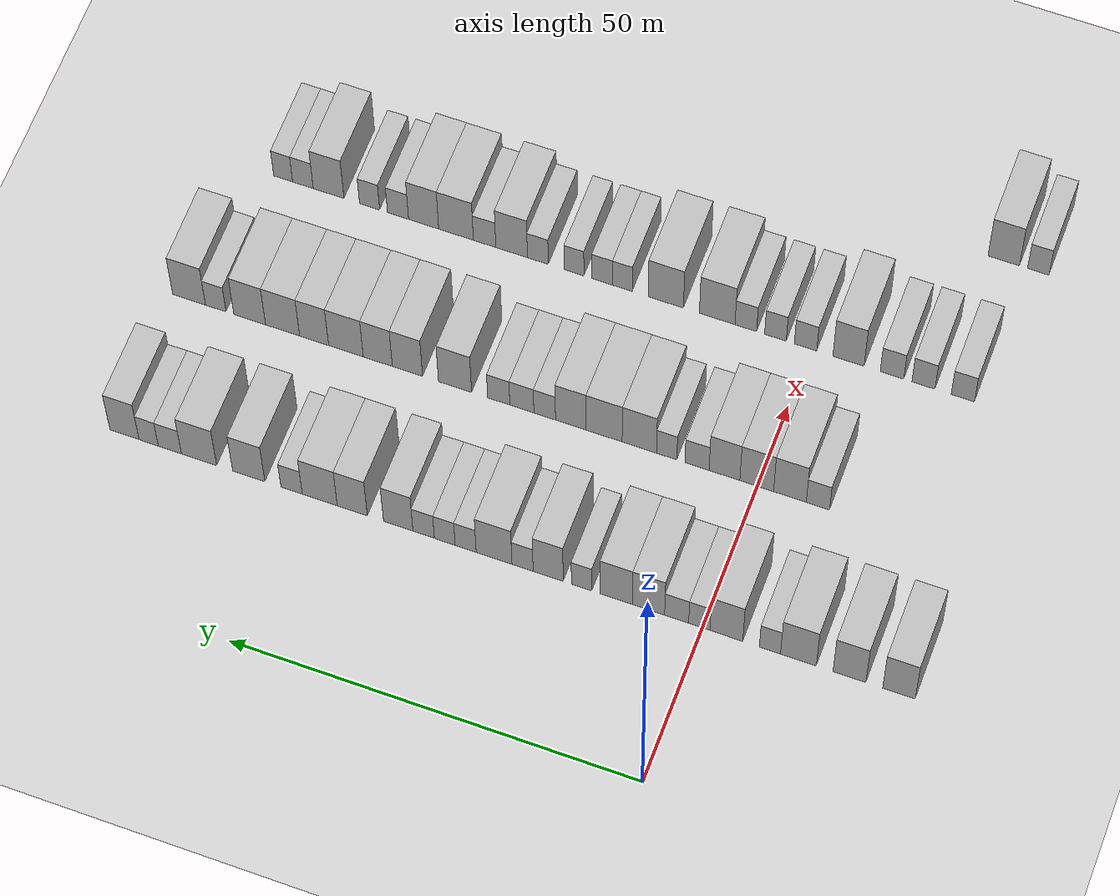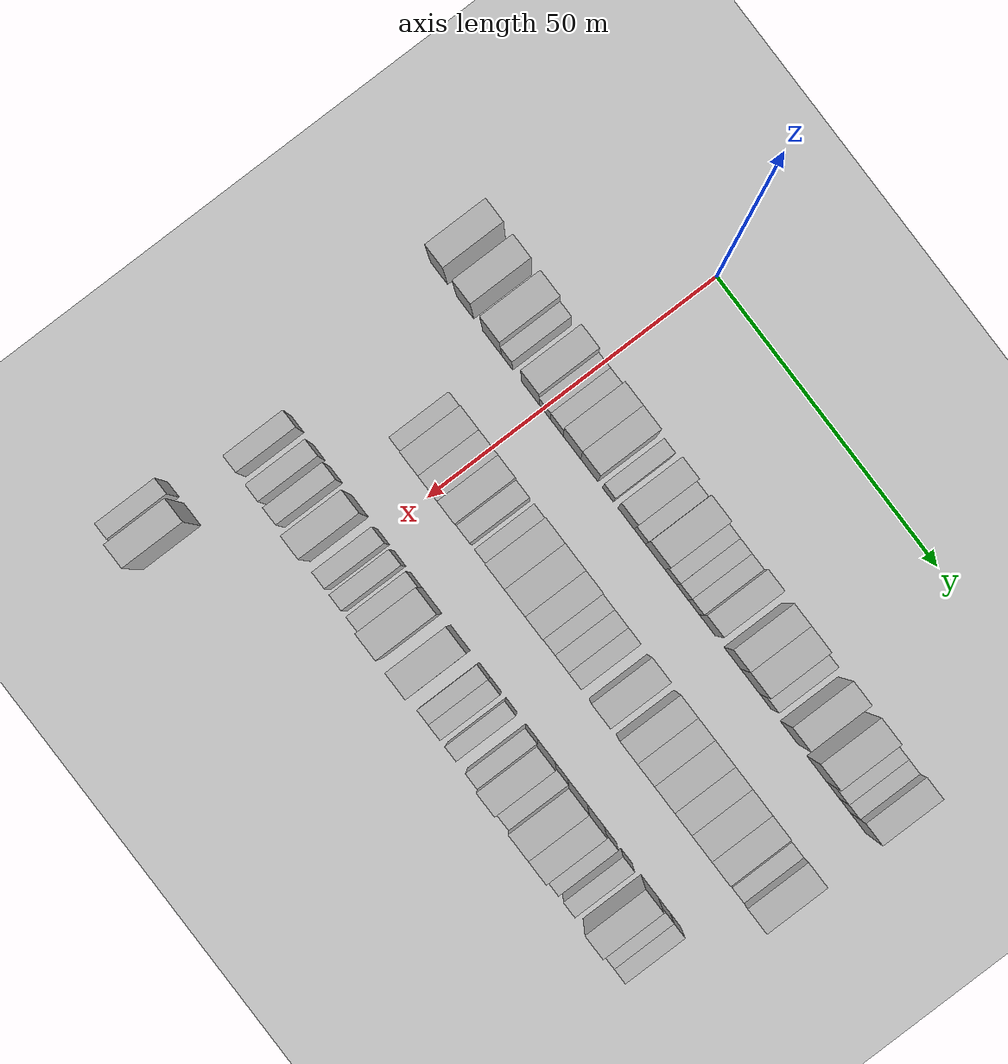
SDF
<sdf version="1.6">
 <world name="default">
  <include><name>ground_plane_1</name><uri>model://HANNAS_ground_plane</uri></include>
  <model name="building_82">
   <static>1</static>
   <pose>25.0000 -23.4913 0 0.000000 0.000000 0.000000</pose>
   <link name="link">
    <pose>0 0 4.50 0 0 0</pose>
    <collision name="collision"><geometry><box><size>10.0000 3.8747 9.0000</size></box></geometry></collision>
    <visual name="visual">
     <cast_shadows>0</cast_shadows>
     <geometry><box><size>10.0000 3.8747 9.0000</size></box></geometry>
     <material>
      <script>
       <uri>model://HANNAS_wall/materials/scripts</uri>
       <uri>model://HANNAS_wall/materials/textures</uri>
       <name>vrc/HANNAS_wall</name>
      </script>
     </material>
    </visual>
   </link>
  </model>
  <model name="building_83">
   <static>1</static>
   <pose>25.0000 -17.5889 0 0.000000 0.000000 0.000000</pose>
   <link name="link">
    <pose>0 0 4.50 0 0 0</pose>
    <collision name="collision"><geometry><box><size>10.0000 3.9301 9.0000</size></box></geometry></collision>
    <visual name="visual">
     <cast_shadows>0</cast_shadows>
     <geometry><box><size>10.0000 3.9301 9.0000</size></box></geometry>
     <material>
      <script>
       <uri>model://HANNAS_wall/materials/scripts</uri>
       <uri>model://HANNAS_wall/materials/textures</uri>
       <name>vrc/HANNAS_wall</name>
      </script>
     </material>
    </visual>
   </link>
  </model>
  <model name="building_84">
   <static>1</static>
   <pose>25.0000 -11.4780 0 0.000000 0.000000 0.000000</pose>
   <link name="link">
    <pose>0 0 4.50 0 0 0</pose>
    <collision name="collision"><geometry><box><size>10.0000 4.2918 9.0000</size></box></geometry></collision>
    <visual name="visual">
     <cast_shadows>0</cast_shadows>
     <geometry><box><size>10.0000 4.2918 9.0000</size></box></geometry>
     <material>
      <script>
       <uri>model://HANNAS_wall/materials/scripts</uri>
       <uri>model://HANNAS_wall/materials/textures</uri>
       <name>vrc/HANNAS_wall</name>
      </script>
     </material>
    </visual>
   </link>
  </model>
  <model name="building_85">
   <static>1</static>
   <pose>25.0000 -8.0637 0 0.000000 0.000000 0.000000</pose>
   <link name="link">
    <pose>0 0 3.00 0 0 0</pose>
    <collision name="collision"><geometry><box><size>10.0000 2.5367 6.0000</size></box></geometry></collision>
    <visual name="visual">
     <cast_shadows>0</cast_shadows>
     <geometry><box><size>10.0000 2.5367 6.0000</size></box></geometry>
     <material>
      <script>
       <uri>model://HANNAS_wall/materials/scripts</uri>
       <uri>model://HANNAS_wall/materials/textures</uri>
       <name>vrc/HANNAS_wall</name>
      </script>
     </material>
    </visual>
   </link>
  </model>
  <model name="building_86">
   <static>1</static>
   <pose>25.0000 -2.8161 0 0.000000 0.000000 0.000000</pose>
   <link name="link">
    <pose>0 0 4.50 0 0 0</pose>
    <collision name="collision"><geometry><box><size>10.0000 3.9586 9.0000</size></box></geometry></collision>
    <visual name="visual">
     <cast_shadows>0</cast_shadows>
     <geometry><box><size>10.0000 3.9586 9.0000</size></box></geometry>
     <material>
      <script>
       <uri>model://HANNAS_wall/materials/scripts</uri>
       <uri>model://HANNAS_wall/materials/textures</uri>
       <name>vrc/HANNAS_wall</name>
      </script>
     </material>
    </visual>
   </link>
  </model>
  <model name="building_87">
   <static>1</static>
   <pose>25.0000 0.4463 0 0.000000 0.000000 0.000000</pose>
   <link name="link">
    <pose>0 0 3.00 0 0 0</pose>
    <collision name="collision"><geometry><box><size>10.0000 2.5663 6.0000</size></box></geometry></collision>
    <visual name="visual">
     <cast_shadows>0</cast_shadows>
     <geometry><box><size>10.0000 2.5663 6.0000</size></box></geometry>
     <material>
      <script>
       <uri>model://HANNAS_wall/materials/scripts</uri>
       <uri>model://HANNAS_wall/materials/textures</uri>
       <name>vrc/HANNAS_wall</name>
      </script>
     </material>
    </visual>
   </link>
  </model>
  <model name="building_88">
   <static>1</static>
   <pose>25.0000 3.1837 0 0.000000 0.000000 0.000000</pose>
   <link name="link">
    <pose>0 0 3.00 0 0 0</pose>
    <collision name="collision"><geometry><box><size>10.0000 2.9085 6.0000</size></box></geometry></collision>
    <visual name="visual">
     <cast_shadows>0</cast_shadows>
     <geometry><box><size>10.0000 2.9085 6.0000</size></box></geometry>
     <material>
      <script>
       <uri>model://HANNAS_wall/materials/scripts</uri>
       <uri>model://HANNAS_wall/materials/textures</uri>
       <name>vrc/HANNAS_wall</name>
      </script>
     </material>
    </visual>
   </link>
  </model>
  <model name="building_89">
   <static>1</static>
   <pose>25.0000 6.5976 0 0.000000 0.000000 0.000000</pose>
   <link name="link">
    <pose>0 0 4.50 0 0 0</pose>
    <collision name="collision"><geometry><box><size>10.0000 3.9193 9.0000</size></box></geometry></collision>
    <visual name="visual">
     <cast_shadows>0</cast_shadows>
     <geometry><box><size>10.0000 3.9193 9.0000</size></box></geometry>
     <material>
      <script>
       <uri>model://HANNAS_wall/materials/scripts</uri>
       <uri>model://HANNAS_wall/materials/textures</uri>
       <name>vrc/HANNAS_wall</name>
      </script>
     </material>
    </visual>
   </link>
  </model>
  <model name="building_90">
   <static>1</static>
   <pose>25.0000 10.5213 0 0.000000 0.000000 0.000000</pose>
   <link name="link">
    <pose>0 0 4.50 0 0 0</pose>
    <collision name="collision"><geometry><box><size>10.0000 3.9281 9.0000</size></box></geometry></collision>
    <visual name="visual">
     <cast_shadows>0</cast_shadows>
     <geometry><box><size>10.0000 3.9281 9.0000</size></box></geometry>
     <material>
      <script>
       <uri>model://HANNAS_wall/materials/scripts</uri>
       <uri>model://HANNAS_wall/materials/textures</uri>
       <name>vrc/HANNAS_wall</name>
      </script>
     </material>
    </visual>
   </link>
  </model>
  <model name="building_91">
   <static>1</static>
   <pose>25.0000 14.7238 0 0.000000 0.000000 0.000000</pose>
   <link name="link">
    <pose>0 0 3.00 0 0 0</pose>
    <collision name="collision"><geometry><box><size>10.0000 2.4768 6.0000</size></box></geometry></collision>
    <visual name="visual">
     <cast_shadows>0</cast_shadows>
     <geometry><box><size>10.0000 2.4768 6.0000</size></box></geometry>
     <material>
      <script>
       <uri>model://HANNAS_wall/materials/scripts</uri>
       <uri>model://HANNAS_wall/materials/textures</uri>
       <name>vrc/HANNAS_wall</name>
      </script>
     </material>
    </visual>
   </link>
  </model>
  <model name="building_92">
   <static>1</static>
   <pose>25.0000 18.7980 0 0.000000 0.000000 0.000000</pose>
   <link name="link">
    <pose>0 0 4.50 0 0 0</pose>
    <collision name="collision"><geometry><box><size>10.0000 3.6717 9.0000</size></box></geometry></collision>
    <visual name="visual">
     <cast_shadows>0</cast_shadows>
     <geometry><box><size>10.0000 3.6717 9.0000</size></box></geometry>
     <material>
      <script>
       <uri>model://HANNAS_wall/materials/scripts</uri>
       <uri>model://HANNAS_wall/materials/textures</uri>
       <name>vrc/HANNAS_wall</name>
      </script>
     </material>
    </visual>
   </link>
  </model>
  <model name="building_93">
   <static>1</static>
   <pose>25.0000 21.9282 0 0.000000 0.000000 0.000000</pose>
   <link name="link">
    <pose>0 0 3.00 0 0 0</pose>
    <collision name="collision"><geometry><box><size>10.0000 2.5887 6.0000</size></box></geometry></collision>
    <visual name="visual">
     <cast_shadows>0</cast_shadows>
     <geometry><box><size>10.0000 2.5887 6.0000</size></box></geometry>
     <material>
      <script>
       <uri>model://HANNAS_wall/materials/scripts</uri>
       <uri>model://HANNAS_wall/materials/textures</uri>
       <name>vrc/HANNAS_wall</name>
      </script>
     </material>
    </visual>
   </link>
  </model>
  <model name="building_94">
   <static>1</static>
   <pose>25.0000 25.4164 0 0.000000 0.000000 0.000000</pose>
   <link name="link">
    <pose>0 0 4.50 0 0 0</pose>
    <collision name="collision"><geometry><box><size>10.0000 4.3876 9.0000</size></box></geometry></collision>
    <visual name="visual">
     <cast_shadows>0</cast_shadows>
     <geometry><box><size>10.0000 4.3876 9.0000</size></box></geometry>
     <material>
      <script>
       <uri>model://HANNAS_wall/materials/scripts</uri>
       <uri>model://HANNAS_wall/materials/textures</uri>
       <name>vrc/HANNAS_wall</name>
      </script>
     </material>
    </visual>
   </link>
  </model>
  <model name="building_95">
   <static>1</static>
   <pose>25.0000 28.9024 0 0.000000 0.000000 0.000000</pose>
   <link name="link">
    <pose>0 0 3.00 0 0 0</pose>
    <collision name="collision"><geometry><box><size>10.0000 2.5844 6.0000</size></box></geometry></collision>
    <visual name="visual">
     <cast_shadows>0</cast_shadows>
     <geometry><box><size>10.0000 2.5844 6.0000</size></box></geometry>
     <material>
      <script>
       <uri>model://HANNAS_wall/materials/scripts</uri>
       <uri>model://HANNAS_wall/materials/textures</uri>
       <name>vrc/HANNAS_wall</name>
      </script>
     </material>
    </visual>
   </link>
  </model>
  <model name="building_96">
   <static>1</static>
   <pose>25.0000 31.4725 0 0.000000 0.000000 0.000000</pose>
   <link name="link">
    <pose>0 0 3.00 0 0 0</pose>
    <collision name="collision"><geometry><box><size>10.0000 2.5557 6.0000</size></box></geometry></collision>
    <visual name="visual">
     <cast_shadows>0</cast_shadows>
     <geometry><box><size>10.0000 2.5557 6.0000</size></box></geometry>
     <material>
      <script>
       <uri>model://HANNAS_wall/materials/scripts</uri>
       <uri>model://HANNAS_wall/materials/textures</uri>
       <name>vrc/HANNAS_wall</name>
      </script>
     </material>
    </visual>
   </link>
  </model>
  <model name="building_97">
   <static>1</static>
   <pose>25.0000 34.0715 0 0.000000 0.000000 0.000000</pose>
   <link name="link">
    <pose>0 0 3.00 0 0 0</pose>
    <collision name="collision"><geometry><box><size>10.0000 2.6424 6.0000</size></box></geometry></collision>
    <visual name="visual">
     <cast_shadows>0</cast_shadows>
     <geometry><box><size>10.0000 2.6424 6.0000</size></box></geometry>
     <material>
      <script>
       <uri>model://HANNAS_wall/materials/scripts</uri>
       <uri>model://HANNAS_wall/materials/textures</uri>
       <name>vrc/HANNAS_wall</name>
      </script>
     </material>
    </visual>
   </link>
  </model>
  <model name="building_98">
   <static>1</static>
   <pose>25.0000 37.2081 0 0.000000 0.000000 0.000000</pose>
   <link name="link">
    <pose>0 0 4.50 0 0 0</pose>
    <collision name="collision"><geometry><box><size>10.0000 3.6308 9.0000</size></box></geometry></collision>
    <visual name="visual">
     <cast_shadows>0</cast_shadows>
     <geometry><box><size>10.0000 3.6308 9.0000</size></box></geometry>
     <material>
      <script>
       <uri>model://HANNAS_wall/materials/scripts</uri>
       <uri>model://HANNAS_wall/materials/textures</uri>
       <name>vrc/HANNAS_wall</name>
      </script>
     </material>
    </visual>
   </link>
  </model>
  <model name="building_99">
   <static>1</static>
   <pose>25.0000 42.8859 0 0.000000 0.000000 0.000000</pose>
   <link name="link">
    <pose>0 0 4.50 0 0 0</pose>
    <collision name="collision"><geometry><box><size>10.0000 3.7246 9.0000</size></box></geometry></collision>
    <visual name="visual">
     <cast_shadows>0</cast_shadows>
     <geometry><box><size>10.0000 3.7246 9.0000</size></box></geometry>
     <material>
      <script>
       <uri>model://HANNAS_wall/materials/scripts</uri>
       <uri>model://HANNAS_wall/materials/textures</uri>
       <name>vrc/HANNAS_wall</name>
      </script>
     </material>
    </visual>
   </link>
  </model>
  <model name="building_100">
   <static>1</static>
   <pose>25.0000 46.9236 0 0.000000 0.000000 0.000000</pose>
   <link name="link">
    <pose>0 0 4.50 0 0 0</pose>
    <collision name="collision"><geometry><box><size>10.0000 4.3510 9.0000</size></box></geometry></collision>
    <visual name="visual">
     <cast_shadows>0</cast_shadows>
     <geometry><box><size>10.0000 4.3510 9.0000</size></box></geometry>
     <material>
      <script>
       <uri>model://HANNAS_wall/materials/scripts</uri>
       <uri>model://HANNAS_wall/materials/textures</uri>
       <name>vrc/HANNAS_wall</name>
      </script>
     </material>
    </visual>
   </link>
  </model>
  <model name="building_101">
   <static>1</static>
   <pose>25.0000 50.4262 0 0.000000 0.000000 0.000000</pose>
   <link name="link">
    <pose>0 0 3.00 0 0 0</pose>
    <collision name="collision"><geometry><box><size>10.0000 2.6542 6.0000</size></box></geometry></collision>
    <visual name="visual">
     <cast_shadows>0</cast_shadows>
     <geometry><box><size>10.0000 2.6542 6.0000</size></box></geometry>
     <material>
      <script>
       <uri>model://HANNAS_wall/materials/scripts</uri>
       <uri>model://HANNAS_wall/materials/textures</uri>
       <name>vrc/HANNAS_wall</name>
      </script>
     </material>
    </visual>
   </link>
  </model>
  <model name="building_102">
   <static>1</static>
   <pose>25.0000 55.7656 0 0.000000 0.000000 0.000000</pose>
   <link name="link">
    <pose>0 0 4.50 0 0 0</pose>
    <collision name="collision"><geometry><box><size>10.0000 4.0245 9.0000</size></box></geometry></collision>
    <visual name="visual">
     <cast_shadows>0</cast_shadows>
     <geometry><box><size>10.0000 4.0245 9.0000</size></box></geometry>
     <material>
      <script>
       <uri>model://HANNAS_wall/materials/scripts</uri>
       <uri>model://HANNAS_wall/materials/textures</uri>
       <name>vrc/HANNAS_wall</name>
      </script>
     </material>
    </visual>
   </link>
  </model>
  <model name="building_103">
   <static>1</static>
   <pose>25.0000 61.9876 0 0.000000 0.000000 0.000000</pose>
   <link name="link">
    <pose>0 0 4.50 0 0 0</pose>
    <collision name="collision"><geometry><box><size>10.0000 4.4195 9.0000</size></box></geometry></collision>
    <visual name="visual">
     <cast_shadows>0</cast_shadows>
     <geometry><box><size>10.0000 4.4195 9.0000</size></box></geometry>
     <material>
      <script>
       <uri>model://HANNAS_wall/materials/scripts</uri>
       <uri>model://HANNAS_wall/materials/textures</uri>
       <name>vrc/HANNAS_wall</name>
      </script>
     </material>
    </visual>
   </link>
  </model>
  <model name="building_104">
   <static>1</static>
   <pose>25.0000 65.6505 0 0.000000 0.000000 0.000000</pose>
   <link name="link">
    <pose>0 0 3.00 0 0 0</pose>
    <collision name="collision"><geometry><box><size>10.0000 2.9064 6.0000</size></box></geometry></collision>
    <visual name="visual">
     <cast_shadows>0</cast_shadows>
     <geometry><box><size>10.0000 2.9064 6.0000</size></box></geometry>
     <material>
      <script>
       <uri>model://HANNAS_wall/materials/scripts</uri>
       <uri>model://HANNAS_wall/materials/textures</uri>
       <name>vrc/HANNAS_wall</name>
      </script>
     </material>
    </visual>
   </link>
  </model>
  <model name="building_105">
   <static>1</static>
   <pose>25.0000 68.3104 0 0.000000 0.000000 0.000000</pose>
   <link name="link">
    <pose>0 0 3.00 0 0 0</pose>
    <collision name="collision"><geometry><box><size>10.0000 2.4135 6.0000</size></box></geometry></collision>
    <visual name="visual">
     <cast_shadows>0</cast_shadows>
     <geometry><box><size>10.0000 2.4135 6.0000</size></box></geometry>
     <material>
      <script>
       <uri>model://HANNAS_wall/materials/scripts</uri>
       <uri>model://HANNAS_wall/materials/textures</uri>
       <name>vrc/HANNAS_wall</name>
      </script>
     </material>
    </visual>
   </link>
  </model>
  <model name="building_106">
   <static>1</static>
   <pose>25.0000 71.3491 0 0.000000 0.000000 0.000000</pose>
   <link name="link">
    <pose>0 0 4.50 0 0 0</pose>
    <collision name="collision"><geometry><box><size>10.0000 3.6638 9.0000</size></box></geometry></collision>
    <visual name="visual">
     <cast_shadows>0</cast_shadows>
     <geometry><box><size>10.0000 3.6638 9.0000</size></box></geometry>
     <material>
      <script>
       <uri>model://HANNAS_wall/materials/scripts</uri>
       <uri>model://HANNAS_wall/materials/textures</uri>
       <name>vrc/HANNAS_wall</name>
      </script>
     </material>
    </visual>
   </link>
  </model>
  <model name="building_251">
   <static>1</static>
   <pose>44.0000 -7.3514 0 0.000000 0.000000 0.000000</pose>
   <link name="link">
    <pose>0 0 3.00 0 0 0</pose>
    <collision name="collision"><geometry><box><size>10.0000 2.8401 6.0000</size></box></geometry></collision>
    <visual name="visual">
     <cast_shadows>0</cast_shadows>
     <geometry><box><size>10.0000 2.8401 6.0000</size></box></geometry>
     <material>
      <script>
       <uri>model://HANNAS_wall/materials/scripts</uri>
       <uri>model://HANNAS_wall/materials/textures</uri>
       <name>vrc/HANNAS_wall</name>
      </script>
     </material>
    </visual>
   </link>
  </model>
  <model name="building_252">
   <static>1</static>
   <pose>44.0000 -3.9336 0 0.000000 0.000000 0.000000</pose>
   <link name="link">
    <pose>0 0 4.50 0 0 0</pose>
    <collision name="collision"><geometry><box><size>10.0000 3.9955 9.0000</size></box></geometry></collision>
    <visual name="visual">
     <cast_shadows>0</cast_shadows>
     <geometry><box><size>10.0000 3.9955 9.0000</size></box></geometry>
     <material>
      <script>
       <uri>model://HANNAS_wall/materials/scripts</uri>
       <uri>model://HANNAS_wall/materials/textures</uri>
       <name>vrc/HANNAS_wall</name>
      </script>
     </material>
    </visual>
   </link>
  </model>
  <model name="building_253">
   <static>1</static>
   <pose>44.0000 0.1264 0 0.000000 0.000000 0.000000</pose>
   <link name="link">
    <pose>0 0 4.50 0 0 0</pose>
    <collision name="collision"><geometry><box><size>10.0000 4.1245 9.0000</size></box></geometry></collision>
    <visual name="visual">
     <cast_shadows>0</cast_shadows>
     <geometry><box><size>10.0000 4.1245 9.0000</size></box></geometry>
     <material>
      <script>
       <uri>model://HANNAS_wall/materials/scripts</uri>
       <uri>model://HANNAS_wall/materials/textures</uri>
       <name>vrc/HANNAS_wall</name>
      </script>
     </material>
    </visual>
   </link>
  </model>
  <model name="building_254">
   <static>1</static>
   <pose>44.0000 4.0746 0 0.000000 0.000000 0.000000</pose>
   <link name="link">
    <pose>0 0 4.50 0 0 0</pose>
    <collision name="collision"><geometry><box><size>10.0000 3.7720 9.0000</size></box></geometry></collision>
    <visual name="visual">
     <cast_shadows>0</cast_shadows>
     <geometry><box><size>10.0000 3.7720 9.0000</size></box></geometry>
     <material>
      <script>
       <uri>model://HANNAS_wall/materials/scripts</uri>
       <uri>model://HANNAS_wall/materials/textures</uri>
       <name>vrc/HANNAS_wall</name>
      </script>
     </material>
    </visual>
   </link>
  </model>
  <model name="building_255">
   <static>1</static>
   <pose>44.0000 7.4499 0 0.000000 0.000000 0.000000</pose>
   <link name="link">
    <pose>0 0 3.00 0 0 0</pose>
    <collision name="collision"><geometry><box><size>10.0000 2.9787 6.0000</size></box></geometry></collision>
    <visual name="visual">
     <cast_shadows>0</cast_shadows>
     <geometry><box><size>10.0000 2.9787 6.0000</size></box></geometry>
     <material>
      <script>
       <uri>model://HANNAS_wall/materials/scripts</uri>
       <uri>model://HANNAS_wall/materials/textures</uri>
       <name>vrc/HANNAS_wall</name>
      </script>
     </material>
    </visual>
   </link>
  </model>
  <model name="building_256">
   <static>1</static>
   <pose>44.0000 11.1920 0 0.000000 0.000000 0.000000</pose>
   <link name="link">
    <pose>0 0 3.00 0 0 0</pose>
    <collision name="collision"><geometry><box><size>10.0000 2.5054 6.0000</size></box></geometry></collision>
    <visual name="visual">
     <cast_shadows>0</cast_shadows>
     <geometry><box><size>10.0000 2.5054 6.0000</size></box></geometry>
     <material>
      <script>
       <uri>model://HANNAS_wall/materials/scripts</uri>
       <uri>model://HANNAS_wall/materials/textures</uri>
       <name>vrc/HANNAS_wall</name>
      </script>
     </material>
    </visual>
   </link>
  </model>
  <model name="building_257">
   <static>1</static>
   <pose>44.0000 14.5626 0 0.000000 0.000000 0.000000</pose>
   <link name="link">
    <pose>0 0 4.50 0 0 0</pose>
    <collision name="collision"><geometry><box><size>10.0000 4.2358 9.0000</size></box></geometry></collision>
    <visual name="visual">
     <cast_shadows>0</cast_shadows>
     <geometry><box><size>10.0000 4.2358 9.0000</size></box></geometry>
     <material>
      <script>
       <uri>model://HANNAS_wall/materials/scripts</uri>
       <uri>model://HANNAS_wall/materials/textures</uri>
       <name>vrc/HANNAS_wall</name>
      </script>
     </material>
    </visual>
   </link>
  </model>
  <model name="building_258">
   <static>1</static>
   <pose>44.0000 18.9139 0 0.000000 0.000000 0.000000</pose>
   <link name="link">
    <pose>0 0 4.50 0 0 0</pose>
    <collision name="collision"><geometry><box><size>10.0000 4.4668 9.0000</size></box></geometry></collision>
    <visual name="visual">
     <cast_shadows>0</cast_shadows>
     <geometry><box><size>10.0000 4.4668 9.0000</size></box></geometry>
     <material>
      <script>
       <uri>model://HANNAS_wall/materials/scripts</uri>
       <uri>model://HANNAS_wall/materials/textures</uri>
       <name>vrc/HANNAS_wall</name>
      </script>
     </material>
    </visual>
   </link>
  </model>
  <model name="building_259">
   <static>1</static>
   <pose>44.0000 23.0418 0 0.000000 0.000000 0.000000</pose>
   <link name="link">
    <pose>0 0 4.50 0 0 0</pose>
    <collision name="collision"><geometry><box><size>10.0000 3.7891 9.0000</size></box></geometry></collision>
    <visual name="visual">
     <cast_shadows>0</cast_shadows>
     <geometry><box><size>10.0000 3.7891 9.0000</size></box></geometry>
     <material>
      <script>
       <uri>model://HANNAS_wall/materials/scripts</uri>
       <uri>model://HANNAS_wall/materials/textures</uri>
       <name>vrc/HANNAS_wall</name>
      </script>
     </material>
    </visual>
   </link>
  </model>
  <model name="building_260">
   <static>1</static>
   <pose>44.0000 26.2802 0 0.000000 0.000000 0.000000</pose>
   <link name="link">
    <pose>0 0 3.00 0 0 0</pose>
    <collision name="collision"><geometry><box><size>10.0000 2.6877 6.0000</size></box></geometry></collision>
    <visual name="visual">
     <cast_shadows>0</cast_shadows>
     <geometry><box><size>10.0000 2.6877 6.0000</size></box></geometry>
     <material>
      <script>
       <uri>model://HANNAS_wall/materials/scripts</uri>
       <uri>model://HANNAS_wall/materials/textures</uri>
       <name>vrc/HANNAS_wall</name>
      </script>
     </material>
    </visual>
   </link>
  </model>
  <model name="building_261">
   <static>1</static>
   <pose>44.0000 29.1234 0 0.000000 0.000000 0.000000</pose>
   <link name="link">
    <pose>0 0 3.00 0 0 0</pose>
    <collision name="collision"><geometry><box><size>10.0000 2.9987 6.0000</size></box></geometry></collision>
    <visual name="visual">
     <cast_shadows>0</cast_shadows>
     <geometry><box><size>10.0000 2.9987 6.0000</size></box></geometry>
     <material>
      <script>
       <uri>model://HANNAS_wall/materials/scripts</uri>
       <uri>model://HANNAS_wall/materials/textures</uri>
       <name>vrc/HANNAS_wall</name>
      </script>
     </material>
    </visual>
   </link>
  </model>
  <model name="building_262">
   <static>1</static>
   <pose>44.0000 32.0087 0 0.000000 0.000000 0.000000</pose>
   <link name="link">
    <pose>0 0 3.00 0 0 0</pose>
    <collision name="collision"><geometry><box><size>10.0000 2.7720 6.0000</size></box></geometry></collision>
    <visual name="visual">
     <cast_shadows>0</cast_shadows>
     <geometry><box><size>10.0000 2.7720 6.0000</size></box></geometry>
     <material>
      <script>
       <uri>model://HANNAS_wall/materials/scripts</uri>
       <uri>model://HANNAS_wall/materials/textures</uri>
       <name>vrc/HANNAS_wall</name>
      </script>
     </material>
    </visual>
   </link>
  </model>
  <model name="building_263">
   <static>1</static>
   <pose>44.0000 37.4664 0 0.000000 0.000000 0.000000</pose>
   <link name="link">
    <pose>0 0 4.50 0 0 0</pose>
    <collision name="collision"><geometry><box><size>10.0000 4.1434 9.0000</size></box></geometry></collision>
    <visual name="visual">
     <cast_shadows>0</cast_shadows>
     <geometry><box><size>10.0000 4.1434 9.0000</size></box></geometry>
     <material>
      <script>
       <uri>model://HANNAS_wall/materials/scripts</uri>
       <uri>model://HANNAS_wall/materials/textures</uri>
       <name>vrc/HANNAS_wall</name>
      </script>
     </material>
    </visual>
   </link>
  </model>
  <model name="building_264">
   <static>1</static>
   <pose>44.0000 43.4358 0 0.000000 0.000000 0.000000</pose>
   <link name="link">
    <pose>0 0 4.50 0 0 0</pose>
    <collision name="collision"><geometry><box><size>10.0000 3.7956 9.0000</size></box></geometry></collision>
    <visual name="visual">
     <cast_shadows>0</cast_shadows>
     <geometry><box><size>10.0000 3.7956 9.0000</size></box></geometry>
     <material>
      <script>
       <uri>model://HANNAS_wall/materials/scripts</uri>
       <uri>model://HANNAS_wall/materials/textures</uri>
       <name>vrc/HANNAS_wall</name>
      </script>
     </material>
    </visual>
   </link>
  </model>
  <model name="building_265">
   <static>1</static>
   <pose>44.0000 47.1627 0 0.000000 0.000000 0.000000</pose>
   <link name="link">
    <pose>0 0 4.50 0 0 0</pose>
    <collision name="collision"><geometry><box><size>10.0000 3.6581 9.0000</size></box></geometry></collision>
    <visual name="visual">
     <cast_shadows>0</cast_shadows>
     <geometry><box><size>10.0000 3.6581 9.0000</size></box></geometry>
     <material>
      <script>
       <uri>model://HANNAS_wall/materials/scripts</uri>
       <uri>model://HANNAS_wall/materials/textures</uri>
       <name>vrc/HANNAS_wall</name>
      </script>
     </material>
    </visual>
   </link>
  </model>
  <model name="building_266">
   <static>1</static>
   <pose>44.0000 51.1775 0 0.000000 0.000000 0.000000</pose>
   <link name="link">
    <pose>0 0 4.50 0 0 0</pose>
    <collision name="collision"><geometry><box><size>10.0000 4.3716 9.0000</size></box></geometry></collision>
    <visual name="visual">
     <cast_shadows>0</cast_shadows>
     <geometry><box><size>10.0000 4.3716 9.0000</size></box></geometry>
     <material>
      <script>
       <uri>model://HANNAS_wall/materials/scripts</uri>
       <uri>model://HANNAS_wall/materials/textures</uri>
       <name>vrc/HANNAS_wall</name>
      </script>
     </material>
    </visual>
   </link>
  </model>
  <model name="building_267">
   <static>1</static>
   <pose>44.0000 55.1977 0 0.000000 0.000000 0.000000</pose>
   <link name="link">
    <pose>0 0 4.50 0 0 0</pose>
    <collision name="collision"><geometry><box><size>10.0000 3.6688 9.0000</size></box></geometry></collision>
    <visual name="visual">
     <cast_shadows>0</cast_shadows>
     <geometry><box><size>10.0000 3.6688 9.0000</size></box></geometry>
     <material>
      <script>
       <uri>model://HANNAS_wall/materials/scripts</uri>
       <uri>model://HANNAS_wall/materials/textures</uri>
       <name>vrc/HANNAS_wall</name>
      </script>
     </material>
    </visual>
   </link>
  </model>
  <model name="building_268">
   <static>1</static>
   <pose>44.0000 59.1911 0 0.000000 0.000000 0.000000</pose>
   <link name="link">
    <pose>0 0 4.50 0 0 0</pose>
    <collision name="collision"><geometry><box><size>10.0000 4.3178 9.0000</size></box></geometry></collision>
    <visual name="visual">
     <cast_shadows>0</cast_shadows>
     <geometry><box><size>10.0000 4.3178 9.0000</size></box></geometry>
     <material>
      <script>
       <uri>model://HANNAS_wall/materials/scripts</uri>
       <uri>model://HANNAS_wall/materials/textures</uri>
       <name>vrc/HANNAS_wall</name>
      </script>
     </material>
    </visual>
   </link>
  </model>
  <model name="building_269">
   <static>1</static>
   <pose>44.0000 63.3660 0 0.000000 0.000000 0.000000</pose>
   <link name="link">
    <pose>0 0 4.50 0 0 0</pose>
    <collision name="collision"><geometry><box><size>10.0000 4.0321 9.0000</size></box></geometry></collision>
    <visual name="visual">
     <cast_shadows>0</cast_shadows>
     <geometry><box><size>10.0000 4.0321 9.0000</size></box></geometry>
     <material>
      <script>
       <uri>model://HANNAS_wall/materials/scripts</uri>
       <uri>model://HANNAS_wall/materials/textures</uri>
       <name>vrc/HANNAS_wall</name>
      </script>
     </material>
    </visual>
   </link>
  </model>
  <model name="building_270">
   <static>1</static>
   <pose>44.0000 67.6890 0 0.000000 0.000000 0.000000</pose>
   <link name="link">
    <pose>0 0 3.00 0 0 0</pose>
    <collision name="collision"><geometry><box><size>10.0000 2.6138 6.0000</size></box></geometry></collision>
    <visual name="visual">
     <cast_shadows>0</cast_shadows>
     <geometry><box><size>10.0000 2.6138 6.0000</size></box></geometry>
     <material>
      <script>
       <uri>model://HANNAS_wall/materials/scripts</uri>
       <uri>model://HANNAS_wall/materials/textures</uri>
       <name>vrc/HANNAS_wall</name>
      </script>
     </material>
    </visual>
   </link>
  </model>
  <model name="building_271">
   <static>1</static>
   <pose>44.0000 71.0904 0 0.000000 0.000000 0.000000</pose>
   <link name="link">
    <pose>0 0 4.50 0 0 0</pose>
    <collision name="collision"><geometry><box><size>10.0000 4.1890 9.0000</size></box></geometry></collision>
    <visual name="visual">
     <cast_shadows>0</cast_shadows>
     <geometry><box><size>10.0000 4.1890 9.0000</size></box></geometry>
     <material>
      <script>
       <uri>model://HANNAS_wall/materials/scripts</uri>
       <uri>model://HANNAS_wall/materials/textures</uri>
       <name>vrc/HANNAS_wall</name>
      </script>
     </material>
    </visual>
   </link>
  </model>
  <model name="building_426">
   <static>1</static>
   <pose>63.0000 -18.7660 0 0.000000 0.000000 0.000000</pose>
   <link name="link">
    <pose>0 0 3.00 0 0 0</pose>
    <collision name="collision"><geometry><box><size>10.0000 2.8481 6.0000</size></box></geometry></collision>
    <visual name="visual">
     <cast_shadows>0</cast_shadows>
     <geometry><box><size>10.0000 2.8481 6.0000</size></box></geometry>
     <material>
      <script>
       <uri>model://HANNAS_wall/materials/scripts</uri>
       <uri>model://HANNAS_wall/materials/textures</uri>
       <name>vrc/HANNAS_wall</name>
      </script>
     </material>
    </visual>
   </link>
  </model>
  <model name="building_427">
   <static>1</static>
   <pose>63.0000 -13.9228 0 0.000000 0.000000 0.000000</pose>
   <link name="link">
    <pose>0 0 3.00 0 0 0</pose>
    <collision name="collision"><geometry><box><size>10.0000 2.8384 6.0000</size></box></geometry></collision>
    <visual name="visual">
     <cast_shadows>0</cast_shadows>
     <geometry><box><size>10.0000 2.8384 6.0000</size></box></geometry>
     <material>
      <script>
       <uri>model://HANNAS_wall/materials/scripts</uri>
       <uri>model://HANNAS_wall/materials/textures</uri>
       <name>vrc/HANNAS_wall</name>
      </script>
     </material>
    </visual>
   </link>
  </model>
  <model name="building_428">
   <static>1</static>
   <pose>63.0000 -10.0515 0 0.000000 0.000000 0.000000</pose>
   <link name="link">
    <pose>0 0 3.00 0 0 0</pose>
    <collision name="collision"><geometry><box><size>10.0000 2.9042 6.0000</size></box></geometry></collision>
    <visual name="visual">
     <cast_shadows>0</cast_shadows>
     <geometry><box><size>10.0000 2.9042 6.0000</size></box></geometry>
     <material>
      <script>
       <uri>model://HANNAS_wall/materials/scripts</uri>
       <uri>model://HANNAS_wall/materials/textures</uri>
       <name>vrc/HANNAS_wall</name>
      </script>
     </material>
    </visual>
   </link>
  </model>
  <model name="building_429">
   <static>1</static>
   <pose>63.0000 -4.6705 0 0.000000 0.000000 0.000000</pose>
   <link name="link">
    <pose>0 0 4.50 0 0 0</pose>
    <collision name="collision"><geometry><box><size>10.0000 3.8579 9.0000</size></box></geometry></collision>
    <visual name="visual">
     <cast_shadows>0</cast_shadows>
     <geometry><box><size>10.0000 3.8579 9.0000</size></box></geometry>
     <material>
      <script>
       <uri>model://HANNAS_wall/materials/scripts</uri>
       <uri>model://HANNAS_wall/materials/textures</uri>
       <name>vrc/HANNAS_wall</name>
      </script>
     </material>
    </visual>
   </link>
  </model>
  <model name="building_430">
   <static>1</static>
   <pose>63.0000 0.6510 0 0.000000 0.000000 0.000000</pose>
   <link name="link">
    <pose>0 0 3.00 0 0 0</pose>
    <collision name="collision"><geometry><box><size>10.0000 2.7850 6.0000</size></box></geometry></collision>
    <visual name="visual">
     <cast_shadows>0</cast_shadows>
     <geometry><box><size>10.0000 2.7850 6.0000</size></box></geometry>
     <material>
      <script>
       <uri>model://HANNAS_wall/materials/scripts</uri>
       <uri>model://HANNAS_wall/materials/textures</uri>
       <name>vrc/HANNAS_wall</name>
      </script>
     </material>
    </visual>
   </link>
  </model>
  <model name="building_431">
   <static>1</static>
   <pose>63.0000 4.3893 0 0.000000 0.000000 0.000000</pose>
   <link name="link">
    <pose>0 0 3.00 0 0 0</pose>
    <collision name="collision"><geometry><box><size>10.0000 2.6916 6.0000</size></box></geometry></collision>
    <visual name="visual">
     <cast_shadows>0</cast_shadows>
     <geometry><box><size>10.0000 2.6916 6.0000</size></box></geometry>
     <material>
      <script>
       <uri>model://HANNAS_wall/materials/scripts</uri>
       <uri>model://HANNAS_wall/materials/textures</uri>
       <name>vrc/HANNAS_wall</name>
      </script>
     </material>
    </visual>
   </link>
  </model>
  <model name="building_432">
   <static>1</static>
   <pose>63.0000 8.0834 0 0.000000 0.000000 0.000000</pose>
   <link name="link">
    <pose>0 0 3.00 0 0 0</pose>
    <collision name="collision"><geometry><box><size>10.0000 2.6966 6.0000</size></box></geometry></collision>
    <visual name="visual">
     <cast_shadows>0</cast_shadows>
     <geometry><box><size>10.0000 2.6966 6.0000</size></box></geometry>
     <material>
      <script>
       <uri>model://HANNAS_wall/materials/scripts</uri>
       <uri>model://HANNAS_wall/materials/textures</uri>
       <name>vrc/HANNAS_wall</name>
      </script>
     </material>
    </visual>
   </link>
  </model>
  <model name="building_433">
   <static>1</static>
   <pose>63.0000 11.6560 0 0.000000 0.000000 0.000000</pose>
   <link name="link">
    <pose>0 0 4.50 0 0 0</pose>
    <collision name="collision"><geometry><box><size>10.0000 4.4484 9.0000</size></box></geometry></collision>
    <visual name="visual">
     <cast_shadows>0</cast_shadows>
     <geometry><box><size>10.0000 4.4484 9.0000</size></box></geometry>
     <material>
      <script>
       <uri>model://HANNAS_wall/materials/scripts</uri>
       <uri>model://HANNAS_wall/materials/textures</uri>
       <name>vrc/HANNAS_wall</name>
      </script>
     </material>
    </visual>
   </link>
  </model>
  <model name="building_434">
   <static>1</static>
   <pose>63.0000 18.0917 0 0.000000 0.000000 0.000000</pose>
   <link name="link">
    <pose>0 0 4.50 0 0 0</pose>
    <collision name="collision"><geometry><box><size>10.0000 4.4231 9.0000</size></box></geometry></collision>
    <visual name="visual">
     <cast_shadows>0</cast_shadows>
     <geometry><box><size>10.0000 4.4231 9.0000</size></box></geometry>
     <material>
      <script>
       <uri>model://HANNAS_wall/materials/scripts</uri>
       <uri>model://HANNAS_wall/materials/textures</uri>
       <name>vrc/HANNAS_wall</name>
      </script>
     </material>
    </visual>
   </link>
  </model>
  <model name="building_435">
   <static>1</static>
   <pose>63.0000 23.5532 0 0.000000 0.000000 0.000000</pose>
   <link name="link">
    <pose>0 0 3.00 0 0 0</pose>
    <collision name="collision"><geometry><box><size>10.0000 2.4999 6.0000</size></box></geometry></collision>
    <visual name="visual">
     <cast_shadows>0</cast_shadows>
     <geometry><box><size>10.0000 2.4999 6.0000</size></box></geometry>
     <material>
      <script>
       <uri>model://HANNAS_wall/materials/scripts</uri>
       <uri>model://HANNAS_wall/materials/textures</uri>
       <name>vrc/HANNAS_wall</name>
      </script>
     </material>
    </visual>
   </link>
  </model>
  <model name="building_436">
   <static>1</static>
   <pose>63.0000 26.0967 0 0.000000 0.000000 0.000000</pose>
   <link name="link">
    <pose>0 0 3.00 0 0 0</pose>
    <collision name="collision"><geometry><box><size>10.0000 2.5871 6.0000</size></box></geometry></collision>
    <visual name="visual">
     <cast_shadows>0</cast_shadows>
     <geometry><box><size>10.0000 2.5871 6.0000</size></box></geometry>
     <material>
      <script>
       <uri>model://HANNAS_wall/materials/scripts</uri>
       <uri>model://HANNAS_wall/materials/textures</uri>
       <name>vrc/HANNAS_wall</name>
      </script>
     </material>
    </visual>
   </link>
  </model>
  <model name="building_437">
   <static>1</static>
   <pose>63.0000 29.6369 0 0.000000 0.000000 0.000000</pose>
   <link name="link">
    <pose>0 0 3.00 0 0 0</pose>
    <collision name="collision"><geometry><box><size>10.0000 2.4933 6.0000</size></box></geometry></collision>
    <visual name="visual">
     <cast_shadows>0</cast_shadows>
     <geometry><box><size>10.0000 2.4933 6.0000</size></box></geometry>
     <material>
      <script>
       <uri>model://HANNAS_wall/materials/scripts</uri>
       <uri>model://HANNAS_wall/materials/textures</uri>
       <name>vrc/HANNAS_wall</name>
      </script>
     </material>
    </visual>
   </link>
  </model>
  <model name="building_438">
   <static>1</static>
   <pose>63.0000 34.2039 0 0.000000 0.000000 0.000000</pose>
   <link name="link">
    <pose>0 0 3.00 0 0 0</pose>
    <collision name="collision"><geometry><box><size>10.0000 2.6408 6.0000</size></box></geometry></collision>
    <visual name="visual">
     <cast_shadows>0</cast_shadows>
     <geometry><box><size>10.0000 2.6408 6.0000</size></box></geometry>
     <material>
      <script>
       <uri>model://HANNAS_wall/materials/scripts</uri>
       <uri>model://HANNAS_wall/materials/textures</uri>
       <name>vrc/HANNAS_wall</name>
      </script>
     </material>
    </visual>
   </link>
  </model>
  <model name="building_439">
   <static>1</static>
   <pose>63.0000 37.5280 0 0.000000 0.000000 0.000000</pose>
   <link name="link">
    <pose>0 0 4.50 0 0 0</pose>
    <collision name="collision"><geometry><box><size>10.0000 4.0073 9.0000</size></box></geometry></collision>
    <visual name="visual">
     <cast_shadows>0</cast_shadows>
     <geometry><box><size>10.0000 4.0073 9.0000</size></box></geometry>
     <material>
      <script>
       <uri>model://HANNAS_wall/materials/scripts</uri>
       <uri>model://HANNAS_wall/materials/textures</uri>
       <name>vrc/HANNAS_wall</name>
      </script>
     </material>
    </visual>
   </link>
  </model>
  <model name="building_440">
   <static>1</static>
   <pose>63.0000 40.9610 0 0.000000 0.000000 0.000000</pose>
   <link name="link">
    <pose>0 0 3.00 0 0 0</pose>
    <collision name="collision"><geometry><box><size>10.0000 2.8586 6.0000</size></box></geometry></collision>
    <visual name="visual">
     <cast_shadows>0</cast_shadows>
     <geometry><box><size>10.0000 2.8586 6.0000</size></box></geometry>
     <material>
      <script>
       <uri>model://HANNAS_wall/materials/scripts</uri>
       <uri>model://HANNAS_wall/materials/textures</uri>
       <name>vrc/HANNAS_wall</name>
      </script>
     </material>
    </visual>
   </link>
  </model>
  <model name="building_441">
   <static>1</static>
   <pose>63.0000 44.5994 0 0.000000 0.000000 0.000000</pose>
   <link name="link">
    <pose>0 0 4.50 0 0 0</pose>
    <collision name="collision"><geometry><box><size>10.0000 4.4182 9.0000</size></box></geometry></collision>
    <visual name="visual">
     <cast_shadows>0</cast_shadows>
     <geometry><box><size>10.0000 4.4182 9.0000</size></box></geometry>
     <material>
      <script>
       <uri>model://HANNAS_wall/materials/scripts</uri>
       <uri>model://HANNAS_wall/materials/textures</uri>
       <name>vrc/HANNAS_wall</name>
      </script>
     </material>
    </visual>
   </link>
  </model>
  <model name="building_442">
   <static>1</static>
   <pose>63.0000 48.7340 0 0.000000 0.000000 0.000000</pose>
   <link name="link">
    <pose>0 0 4.50 0 0 0</pose>
    <collision name="collision"><geometry><box><size>10.0000 3.8511 9.0000</size></box></geometry></collision>
    <visual name="visual">
     <cast_shadows>0</cast_shadows>
     <geometry><box><size>10.0000 3.8511 9.0000</size></box></geometry>
     <material>
      <script>
       <uri>model://HANNAS_wall/materials/scripts</uri>
       <uri>model://HANNAS_wall/materials/textures</uri>
       <name>vrc/HANNAS_wall</name>
      </script>
     </material>
    </visual>
   </link>
  </model>
  <model name="building_443">
   <static>1</static>
   <pose>63.0000 52.0084 0 0.000000 0.000000 0.000000</pose>
   <link name="link">
    <pose>0 0 3.00 0 0 0</pose>
    <collision name="collision"><geometry><box><size>10.0000 2.6977 6.0000</size></box></geometry></collision>
    <visual name="visual">
     <cast_shadows>0</cast_shadows>
     <geometry><box><size>10.0000 2.6977 6.0000</size></box></geometry>
     <material>
      <script>
       <uri>model://HANNAS_wall/materials/scripts</uri>
       <uri>model://HANNAS_wall/materials/textures</uri>
       <name>vrc/HANNAS_wall</name>
      </script>
     </material>
    </visual>
   </link>
  </model>
  <model name="building_444">
   <static>1</static>
   <pose>63.0000 55.6458 0 0.000000 0.000000 0.000000</pose>
   <link name="link">
    <pose>0 0 3.00 0 0 0</pose>
    <collision name="collision"><geometry><box><size>10.0000 2.5772 6.0000</size></box></geometry></collision>
    <visual name="visual">
     <cast_shadows>0</cast_shadows>
     <geometry><box><size>10.0000 2.5772 6.0000</size></box></geometry>
     <material>
      <script>
       <uri>model://HANNAS_wall/materials/scripts</uri>
       <uri>model://HANNAS_wall/materials/textures</uri>
       <name>vrc/HANNAS_wall</name>
      </script>
     </material>
    </visual>
   </link>
  </model>
  <model name="building_445">
   <static>1</static>
   <pose>63.0000 60.9073 0 0.000000 0.000000 0.000000</pose>
   <link name="link">
    <pose>0 0 4.50 0 0 0</pose>
    <collision name="collision"><geometry><box><size>10.0000 3.9458 9.0000</size></box></geometry></collision>
    <visual name="visual">
     <cast_shadows>0</cast_shadows>
     <geometry><box><size>10.0000 3.9458 9.0000</size></box></geometry>
     <material>
      <script>
       <uri>model://HANNAS_wall/materials/scripts</uri>
       <uri>model://HANNAS_wall/materials/textures</uri>
       <name>vrc/HANNAS_wall</name>
      </script>
     </material>
    </visual>
   </link>
  </model>
  <model name="building_446">
   <static>1</static>
   <pose>63.0000 64.2091 0 0.000000 0.000000 0.000000</pose>
   <link name="link">
    <pose>0 0 3.00 0 0 0</pose>
    <collision name="collision"><geometry><box><size>10.0000 2.6579 6.0000</size></box></geometry></collision>
    <visual name="visual">
     <cast_shadows>0</cast_shadows>
     <geometry><box><size>10.0000 2.6579 6.0000</size></box></geometry>
     <material>
      <script>
       <uri>model://HANNAS_wall/materials/scripts</uri>
       <uri>model://HANNAS_wall/materials/textures</uri>
       <name>vrc/HANNAS_wall</name>
      </script>
     </material>
    </visual>
   </link>
  </model>
  <model name="building_447">
   <static>1</static>
   <pose>63.0000 66.7558 0 0.000000 0.000000 0.000000</pose>
   <link name="link">
    <pose>0 0 3.00 0 0 0</pose>
    <collision name="collision"><geometry><box><size>10.0000 2.4356 6.0000</size></box></geometry></collision>
    <visual name="visual">
     <cast_shadows>0</cast_shadows>
     <geometry><box><size>10.0000 2.4356 6.0000</size></box></geometry>
     <material>
      <script>
       <uri>model://HANNAS_wall/materials/scripts</uri>
       <uri>model://HANNAS_wall/materials/textures</uri>
       <name>vrc/HANNAS_wall</name>
      </script>
     </material>
    </visual>
   </link>
  </model>
  <model name="building_607">
   <static>1</static>
   <pose>82.0000 -22.0032 0 0.000000 0.000000 0.000000</pose>
   <link name="link">
    <pose>0 0 3.00 0 0 0</pose>
    <collision name="collision"><geometry><box><size>10.0000 2.6571 6.0000</size></box></geometry></collision>
    <visual name="visual">
     <cast_shadows>0</cast_shadows>
     <geometry><box><size>10.0000 2.6571 6.0000</size></box></geometry>
     <material>
      <script>
       <uri>model://HANNAS_wall/materials/scripts</uri>
       <uri>model://HANNAS_wall/materials/textures</uri>
       <name>vrc/HANNAS_wall</name>
      </script>
     </material>
    </visual>
   </link>
  </model>
  <model name="building_608">
   <static>1</static>
   <pose>82.0000 -17.7156 0 0.000000 0.000000 0.000000</pose>
   <link name="link">
    <pose>0 0 4.50 0 0 0</pose>
    <collision name="collision"><geometry><box><size>10.0000 3.9182 9.0000</size></box></geometry></collision>
    <visual name="visual">
     <cast_shadows>0</cast_shadows>
     <geometry><box><size>10.0000 3.9182 9.0000</size></box></geometry>
     <material>
      <script>
       <uri>model://HANNAS_wall/materials/scripts</uri>
       <uri>model://HANNAS_wall/materials/textures</uri>
       <name>vrc/HANNAS_wall</name>
      </script>
     </material>
    </visual>
   </link>
  </model>
 </world>
</sdf>
